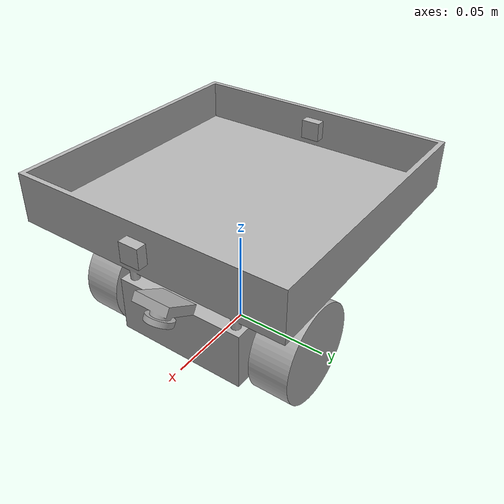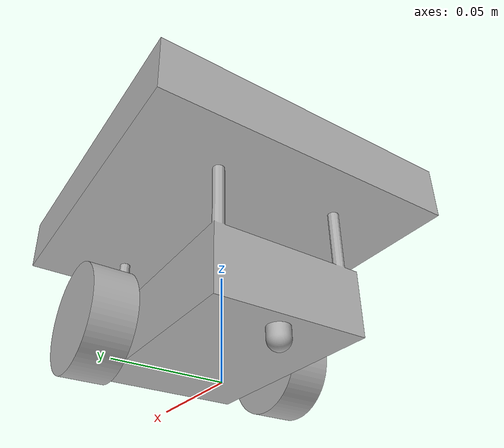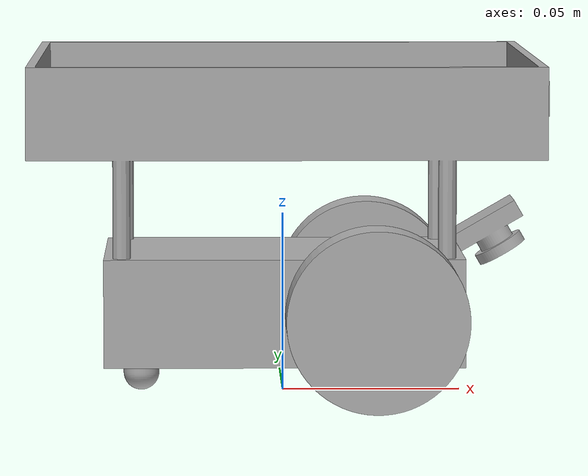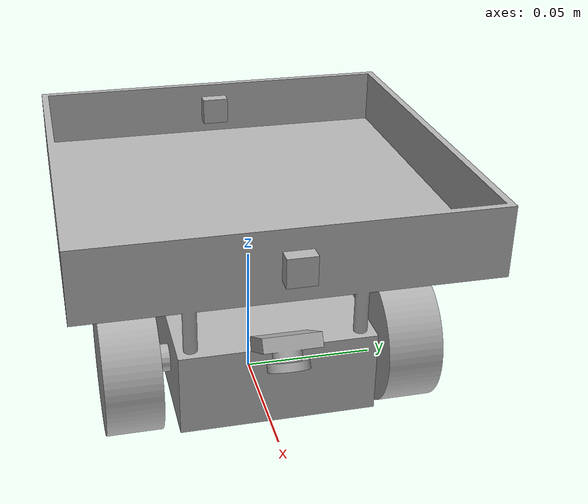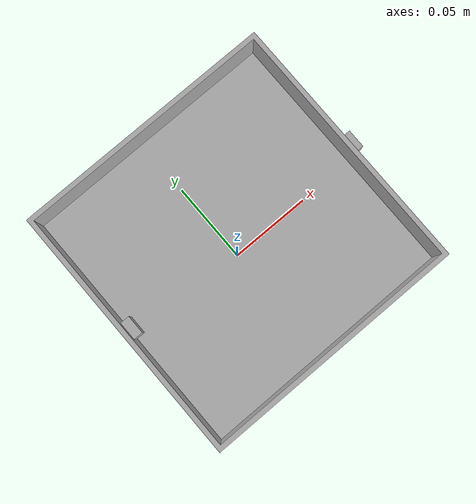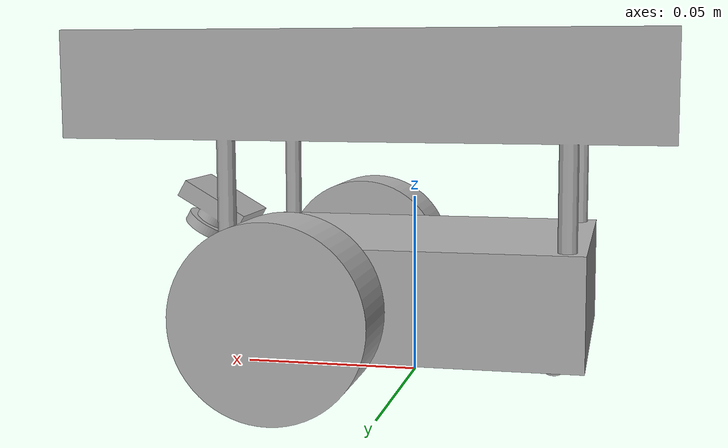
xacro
<?xml version="1.0" ?>
<robot name="auto" xmlns:xacro="http://www.ros.org/wiki/xacro">

<xacro:include filename="$(find auto_description)/urdf/materials.xacro" />
<xacro:include filename="$(find auto_description)/urdf/auto.trans" />
<xacro:include filename="$(find auto_description)/urdf/auto.gazebo" />
<link name="base_link">
  <inertial>
    <origin rpy="0 0 0" xyz="5.798151942778149e-05 1.3428573475664087e-17 0.04382723792061693"/>
    <mass value="0.3589600882128054"/>
    <inertia ixx="0.000588" ixy="-0.0" ixz="0.0" iyy="0.000685" iyz="-0.0" izz="0.000809"/>
  </inertial>
  <visual>
    <origin rpy="0 0 0" xyz="0 0 0"/>
    <geometry>
      <mesh filename="package://auto_description/meshes/base_link.stl" scale="0.001 0.001 0.001"/>
    </geometry>
    <material name="silver"/>
  </visual>
  <collision>
    <origin rpy="0 0 0" xyz="0 0 0"/>
    <geometry>
      <mesh filename="package://auto_description/meshes/base_link.stl" scale="0.001 0.001 0.001"/>
    </geometry>
  </collision>
</link>

<link name="wheel_right_1">
  <inertial>
    <origin rpy="0 0 0" xyz="-6.938893903907228e-18 -0.009999999999999988 -6.938893903907228e-18"/>
    <mass value="0.3082687791334984"/>
    <inertia ixx="5.8e-05" ixy="0.0" ixz="-0.0" iyy="9.6e-05" iyz="0.0" izz="5.8e-05"/>
  </inertial>
  <visual>
    <origin rpy="0 0 0" xyz="-0.025 0.04 -0.025"/>
    <geometry>
      <mesh filename="package://auto_description/meshes/wheel_right_1.stl" scale="0.001 0.001 0.001"/>
    </geometry>
    <material name="silver"/>
  </visual>
  <collision>
    <origin rpy="0 0 0" xyz="-0.025 0.04 -0.025"/>
    <geometry>
      <mesh filename="package://auto_description/meshes/wheel_right_1.stl" scale="0.001 0.001 0.001"/>
    </geometry>
  </collision>
</link>

<link name="wheel_left_1">
  <inertial>
    <origin rpy="0 0 0" xyz="-6.938893903907228e-18 0.010000000000000002 -6.938893903907228e-18"/>
    <mass value="0.3082687791334984"/>
    <inertia ixx="5.8e-05" ixy="0.0" ixz="-0.0" iyy="9.6e-05" iyz="0.0" izz="5.8e-05"/>
  </inertial>
  <visual>
    <origin rpy="0 0 0" xyz="-0.025 -0.04 -0.025"/>
    <geometry>
      <mesh filename="package://auto_description/meshes/wheel_left_1.stl" scale="0.001 0.001 0.001"/>
    </geometry>
    <material name="silver"/>
  </visual>
  <collision>
    <origin rpy="0 0 0" xyz="-0.025 -0.04 -0.025"/>
    <geometry>
      <mesh filename="package://auto_description/meshes/wheel_left_1.stl" scale="0.001 0.001 0.001"/>
    </geometry>
  </collision>
</link>

<link name="caster_1">
  <inertial>
    <origin rpy="0 0 0" xyz="-6.273939701095799e-13 0.0 -0.00425000000000003"/>
    <mass value="0.005137812985558175"/>
    <inertia ixx="0.0" ixy="0.0" ixz="0.0" iyy="0.0" iyz="0.0" izz="0.0"/>
  </inertial>
  <visual>
    <origin rpy="0 0 0" xyz="0.04 -0.0 -0.01"/>
    <geometry>
      <mesh filename="package://auto_description/meshes/caster_1.stl" scale="0.001 0.001 0.001"/>
    </geometry>
    <material name="silver"/>
  </visual>
  <collision>
    <origin rpy="0 0 0" xyz="0.04 -0.0 -0.01"/>
    <geometry>
      <mesh filename="package://auto_description/meshes/caster_1.stl" scale="0.001 0.001 0.001"/>
    </geometry>
  </collision>
</link>

<link name="camera_1">
  <inertial>
    <origin rpy="0 0 0" xyz="-0.0007879318613192368 -8.528479810766139e-14 0.010000000197105362"/>
    <mass value="0.021347484202033667"/>
    <inertia ixx="1e-06" ixy="-0.0" ixz="-0.0" iyy="1e-06" iyz="-0.0" izz="1e-06"/>
  </inertial>
  <visual>
    <origin rpy="0 0 0" xyz="-0.05 -0.0 -0.04"/>
    <geometry>
      <mesh filename="package://auto_description/meshes/camera_1.stl" scale="0.001 0.001 0.001"/>
    </geometry>
    <material name="silver"/>
  </visual>
  <collision>
    <origin rpy="0 0 0" xyz="-0.05 -0.0 -0.04"/>
    <geometry>
      <mesh filename="package://auto_description/meshes/camera_1.stl" scale="0.001 0.001 0.001"/>
    </geometry>
  </collision>
</link>

<link name="box_sensor_1">
  <inertial>
    <origin rpy="0 0 0" xyz="0.0025000000000000022 0.0 0.0"/>
    <mass value="0.003925"/>
    <inertia ixx="0.0" ixy="0.0" ixz="-0.0" iyy="0.0" iyz="0.0" izz="0.0"/>
  </inertial>
  <visual>
    <origin rpy="0 0 0" xyz="0.0675 -0.0 -0.085"/>
    <geometry>
      <mesh filename="package://auto_description/meshes/box_sensor_1.stl" scale="0.001 0.001 0.001"/>
    </geometry>
    <material name="silver"/>
  </visual>
  <collision>
    <origin rpy="0 0 0" xyz="0.0675 -0.0 -0.085"/>
    <geometry>
      <mesh filename="package://auto_description/meshes/box_sensor_1.stl" scale="0.001 0.001 0.001"/>
    </geometry>
  </collision>
</link>

<link name="door_sensor_1">
  <inertial>
    <origin rpy="0 0 0" xyz="0.0024999999999999883 0.0 0.0"/>
    <mass value="0.003925"/>
    <inertia ixx="0.0" ixy="0.0" ixz="-0.0" iyy="0.0" iyz="0.0" izz="0.0"/>
  </inertial>
  <visual>
    <origin rpy="0 0 0" xyz="-0.07 -0.0 -0.0825"/>
    <geometry>
      <mesh filename="package://auto_description/meshes/door_sensor_1.stl" scale="0.001 0.001 0.001"/>
    </geometry>
    <material name="silver"/>
  </visual>
  <collision>
    <origin rpy="0 0 0" xyz="-0.07 -0.0 -0.0825"/>
    <geometry>
      <mesh filename="package://auto_description/meshes/door_sensor_1.stl" scale="0.001 0.001 0.001"/>
    </geometry>
  </collision>
</link>

<joint name="motor_right" type="continuous">
  <origin rpy="0 0 0" xyz="0.025 -0.04 0.025"/>
  <parent link="base_link"/>
  <child link="wheel_right_1"/>
  <axis xyz="0.0 1.0 0.0"/>
</joint>

<joint name="motor_left" type="continuous">
  <origin rpy="0 0 0" xyz="0.025 0.04 0.025"/>
  <parent link="base_link"/>
  <child link="wheel_left_1"/>
  <axis xyz="0.0 1.0 0.0"/>
</joint>

<joint name="Rigid3" type="fixed">
  <origin rpy="0 0 0" xyz="-0.04 0.0 0.01"/>
  <parent link="base_link"/>
  <child link="caster_1"/>
</joint>

<joint name="Rigid4" type="fixed">
  <origin rpy="0 1.0472 0" xyz="0.05 0.0 0.04"/>
  <parent link="base_link"/>
  <child link="camera_1"/>
</joint>

<joint name="Rigid5" type="fixed">
  <origin rpy="0 0 0" xyz="-0.0675 0.0 0.085"/>
  <parent link="base_link"/>
  <child link="box_sensor_1"/>
</joint>

<joint name="Rigid6" type="fixed">
  <origin rpy="0 0 0" xyz="0.07 0.0 0.0825"/>
  <parent link="base_link"/>
  <child link="door_sensor_1"/>
</joint>

</robot>

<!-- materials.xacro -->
<robot name="auto" xmlns:xacro="http://www.ros.org/wiki/xacro" >

<material name="silver">
  <color rgba="0.700 0.700 0.700 1.000"/>
</material>

</robot>

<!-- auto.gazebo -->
<robot name="auto" xmlns:xacro="http://www.ros.org/wiki/xacro" >

<xacro:property name="body_color" value="Gazebo/Green" />
<xacro:property name="wheel_color" value="Gazebo/Black" />
<xacro:property name="sensor_color" value="Gazebo/Blue" />

<gazebo>
  <plugin filename="libgazebo_ros_control.so" name="control"/>
</gazebo>

<gazebo reference="base_link">
  <material>${body_color}</material>
  <mu1>1000.0</mu1>
  <mu2>1000.0</mu2>
  <selfCollide>true</selfCollide>
  <gravity>true</gravity>
</gazebo>

<gazebo reference="wheel_right_1">
  <material>${wheel_color}</material>
  <mu1>100.0</mu1>
  <mu2>100.0</mu2>
  <selfCollide>true</selfCollide>
</gazebo>

<gazebo reference="wheel_left_1">
  <material>${wheel_color}</material>
  <mu1>100.0</mu1>
  <mu2>100.0</mu2>
  <selfCollide>true</selfCollide>
</gazebo>

<gazebo reference="caster_1">
  <material>${wheel_color}</material>
  <mu1>0.001</mu1>
  <mu2>0.001</mu2>
  <selfCollide>true</selfCollide>
</gazebo>

<gazebo reference="camera_1">
  <material>${sensor_color}</material>
  <mu1>0.2</mu1>
  <mu2>0.2</mu2>
  <selfCollide>true</selfCollide>
</gazebo>

<gazebo reference="box_sensor_1">
  <material>${sensor_color}</material>
  <mu1>0.2</mu1>
  <mu2>0.2</mu2>
  <selfCollide>true</selfCollide>
</gazebo>

<gazebo reference="door_sensor_1">
  <material>${sensor_color}</material>
  <mu1>0.2</mu1>
  <mu2>0.2</mu2>
  <selfCollide>true</selfCollide>
</gazebo>

<gazebo>
  <plugin name="differential_drive_controller" filename="libgazebo_ros_diff_drive.so">
    <updateRate>10</updateRate>
    <leftJoint>motor_left</leftJoint>
    <rightJoint>motor_right</rightJoint>
    <wheelSeparation>0.1</wheelSeparation>
    <wheelDiameter>0.05</wheelDiameter>
    <wheelAcceleration>0.1</wheelAcceleration>
    <wheelTorque>10</wheelTorque>
    <commandTopic>auto/cmd_vel</commandTopic>
    <odometryTopic>odom</odometryTopic>
    <odometryFrame>odom</odometryFrame>
    <robotBaseFrame>base_link</robotBaseFrame>
    <odometrySource>1</odometrySource>
    <publishWheelTF>true</publishWheelTF>
    <publishOdom>true</publishOdom>
    <publishWheelJointState>true</publishWheelJointState>
    <legacyMode>false</legacyMode>
  </plugin>
</gazebo>

<!-- camera -->
  <gazebo reference="camera_1">
    <sensor type="camera" name="camera">
      <update_rate>30.0</update_rate>
      <camera name="head">
        <horizontal_fov>1.3962634</horizontal_fov>
        <image>
          <width>800</width>
          <height>800</height>
          <format>R8G8B8</format>
        </image>
        <clip>
          <near>0.02</near>
          <far>300</far>
        </clip>
        <noise>
          <type>gaussian</type>
          <!-- Noise is sampled independently per pixel on each frame.
               That pixel's noise value is added to each of its color
               channels, which at that point lie in the range [0,1]. -->
          <mean>0.0</mean>
          <stddev>0.007</stddev>
        </noise>
      </camera>
      <plugin name="camera_controller" filename="libgazebo_ros_camera.so">
        <alwaysOn>true</alwaysOn>
        <updateRate>0.0</updateRate>
        <cameraName>autobot/camera</cameraName>
        <imageTopicName>image_raw</imageTopicName>
        <cameraInfoTopicName>camera_info</cameraInfoTopicName>
        <frameName>camera_1</frameName>
        <hackBaseline>0.07</hackBaseline>
        <distortionK1>0.0</distortionK1>
        <distortionK2>0.0</distortionK2>
        <distortionK3>0.0</distortionK3>
        <distortionT1>0.0</distortionT1>
        <distortionT2>0.0</distortionT2>
      </plugin>
    </sensor>
  </gazebo>

  <gazebo reference="box_sensor_1">
   <sensor type="ray" name="box_sensor">
      <pose>0 0 0 0 0 0</pose>
      <visualize>true</visualize>
      <update_rate>40</update_rate>
      <ray>
        <scan>
          <horizontal>
            <samples>10</samples>
            <resolution>1</resolution>
            <min_angle>-0.0174533</min_angle>
            <max_angle>0.0174533</max_angle>
          </horizontal>
        </scan>
        <range>
          <min>0.01</min>
          <max>30.0</max>
          <resolution>0.01</resolution>
        </range>
        <noise>
          <type>gaussian</type>
          <mean>0.0</mean>
          <stddev>0.01</stddev>
        </noise>
      </ray>
      <plugin name="gazebo_ros_head_hokuyo_controller" filename="libgazebo_ros_laser.so">
        <topicName>sensor/box_sensor</topicName>
        <frameName>box_sensor_1</frameName>
      </plugin>
    </sensor>
   </gazebo>

   <gazebo reference="door_sensor_1">
   <sensor type="ray" name="door_sensor">
      <pose>0 0 0 0 0 0</pose>
      <visualize>true</visualize>
      <update_rate>40</update_rate>
      <ray>
        <scan>
          <horizontal>
            <samples>10</samples>
            <resolution>1</resolution>
            <min_angle>-0.0174533</min_angle>
            <max_angle>0.0174533</max_angle>
          </horizontal>
        </scan>
        <range>
          <min>0.01</min>
          <max>30.0</max>
          <resolution>0.01</resolution>
        </range>
        <noise>
          <type>gaussian</type>
          <mean>0.0</mean>
          <stddev>0.01</stddev>
        </noise>
      </ray>
      <plugin name="gazebo_ros_head_hokuyo_controller" filename="libgazebo_ros_laser.so">
        <topicName>sensor/door_sensor</topicName>
        <frameName>door_sensor_1</frameName>
      </plugin>
    </sensor>
   </gazebo>

</robot>
